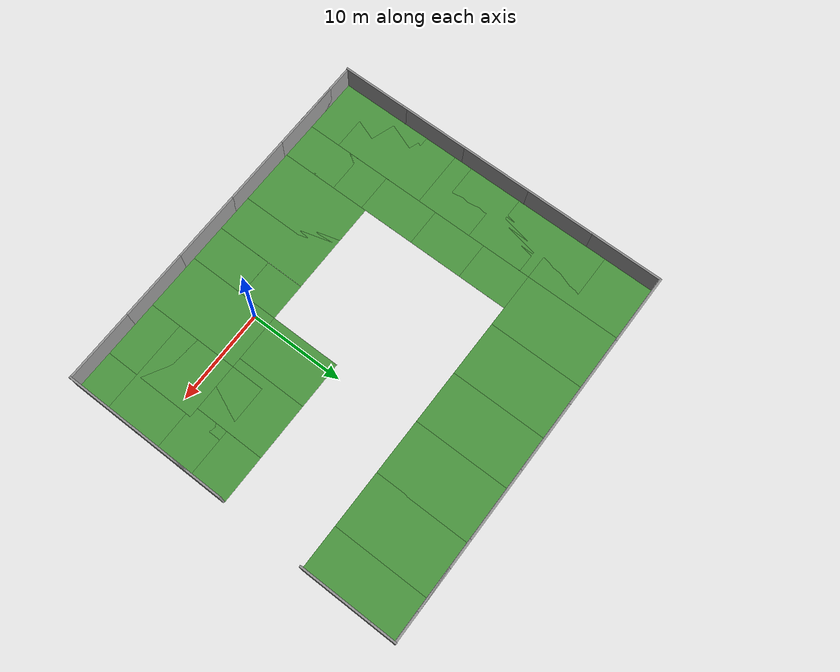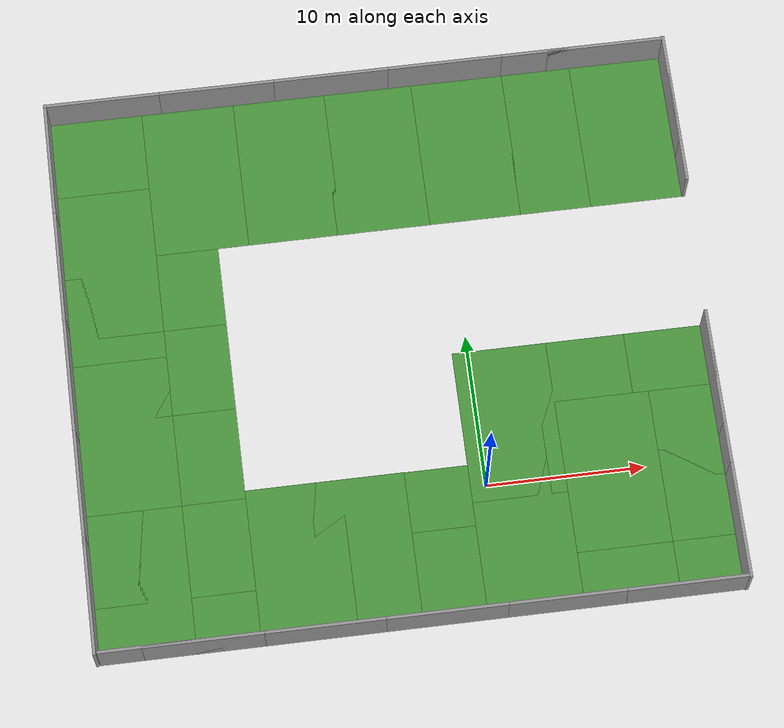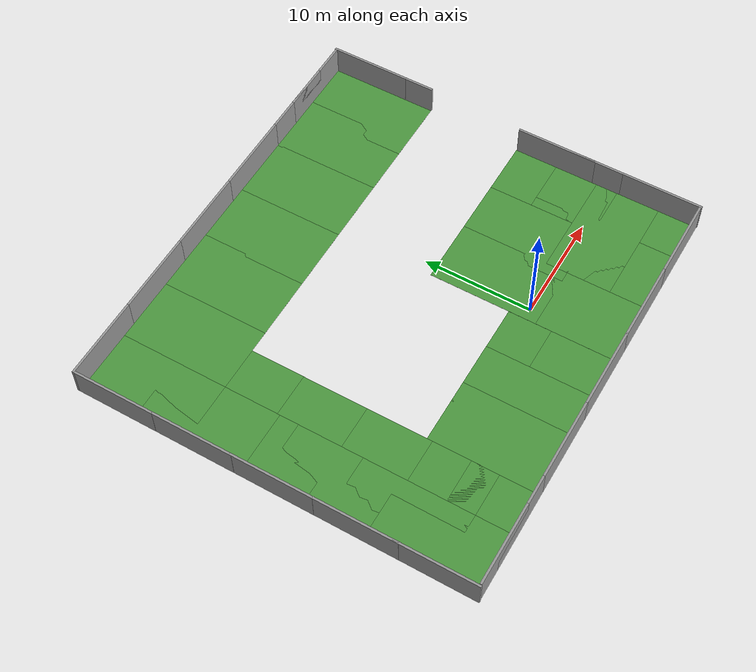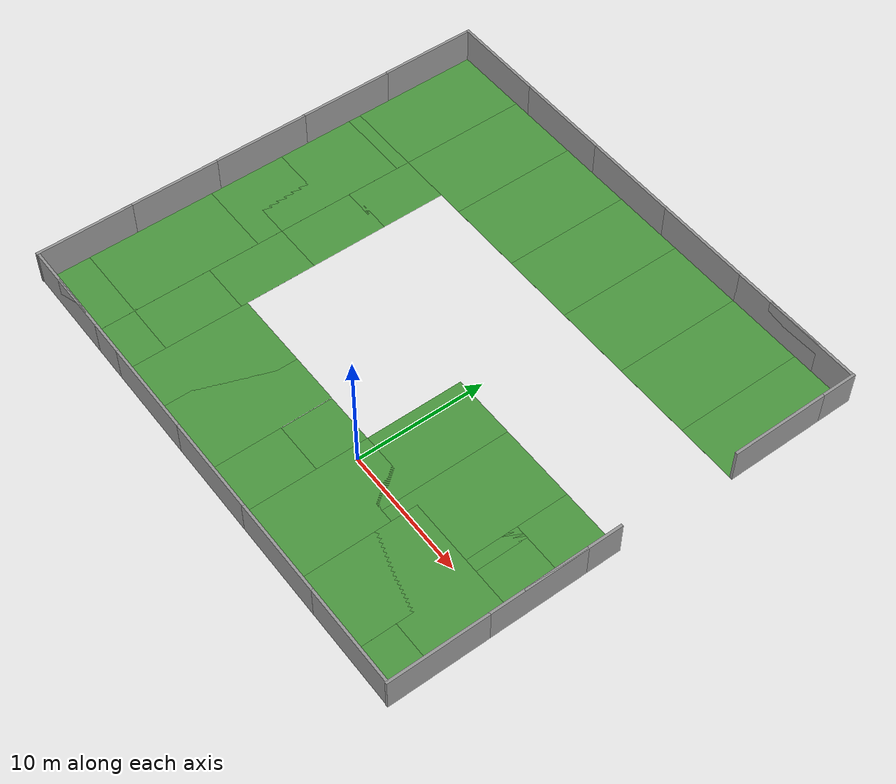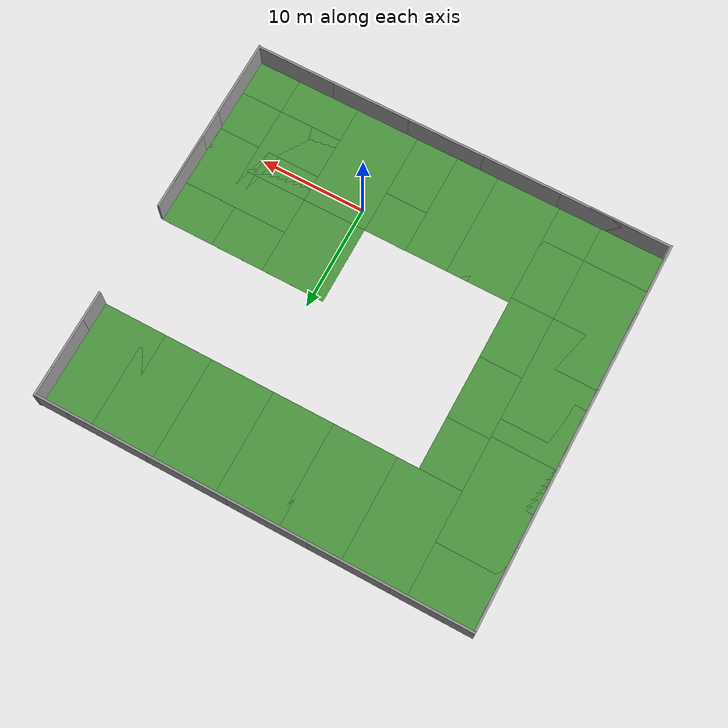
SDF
<sdf version="1.7">
 <world name="default">
  <physics name="ode_70iters" type="ode">
   <max_step_size>0.001</max_step_size>
   <real_time_update_rate>1000</real_time_update_rate>
   <ode>
    <solver>
     <type>quick</type>
     <iters>70</iters>
     <sor>1.3</sor>
     <use_dynamic_moi_rescaling>0</use_dynamic_moi_rescaling>
    </solver>
    <constraints>
     <cfm>0</cfm>
     <erp>0.2</erp>
     <contact_max_correcting_vel>100</contact_max_correcting_vel>
     <contact_surface_layer>0.001</contact_surface_layer>
    </constraints>
   </ode>
   <real_time_factor>1</real_time_factor>
  </physics>
  <model name="garden_0">
   <static>1</static>
   <link name="link">
    <collision name="collision">
     <geometry><plane><normal>0 0 1</normal><size>100 100</size></plane></geometry>
     <surface><friction><ode><mu>100</mu><mu2>50</mu2></ode></friction></surface>
    </collision>
    <visual name="visual_0">
     <pose>-2 0 0 0 -0 0</pose>
     <cast_shadows>0</cast_shadows>
     <geometry><plane><normal>0 0 1</normal><size>6 10</size></plane></geometry>
     <material>
      <script>
       <uri>model://garden/materials/scripts</uri>
       <uri>model://garden/materials/textures</uri>
       <name>vrc/grass</name>
      </script>
     </material>
    </visual>
    <visual name="visual_1">
     <pose>3 -2 0 0 -0 0</pose>
     <cast_shadows>0</cast_shadows>
     <geometry><plane><normal>0 0 1</normal><size>4 6</size></plane></geometry>
     <material>
      <script>
       <uri>model://garden/materials/scripts</uri>
       <uri>model://garden/materials/textures</uri>
       <name>vrc/grass</name>
      </script>
     </material>
    </visual>
   </link>
   <pose>0 0.5 0 0 -0 1.5708</pose>
  </model>
  <model name="garden_1">
   <static>1</static>
   <link name="link">
    <collision name="collision">
     <geometry><plane><normal>0 0 1</normal><size>100 100</size></plane></geometry>
     <surface><friction><ode><mu>100</mu><mu2>50</mu2></ode></friction></surface>
    </collision>
    <visual name="visual_0">
     <pose>-2 0 0 0 -0 0</pose>
     <cast_shadows>0</cast_shadows>
     <geometry><plane><normal>0 0 1</normal><size>6 10</size></plane></geometry>
     <material>
      <script>
       <uri>model://garden/materials/scripts</uri>
       <uri>model://garden/materials/textures</uri>
       <name>vrc/grass</name>
      </script>
     </material>
    </visual>
    <visual name="visual_1">
     <pose>3 -2 0 0 -0 0</pose>
     <cast_shadows>0</cast_shadows>
     <geometry><plane><normal>0 0 1</normal><size>4 6</size></plane></geometry>
     <material>
      <script>
       <uri>model://garden/materials/scripts</uri>
       <uri>model://garden/materials/textures</uri>
       <name>vrc/grass</name>
      </script>
     </material>
    </visual>
   </link>
   <pose>10 0 0 0 -0 1.5708</pose>
  </model>
  <model name="garden_2">
   <static>1</static>
   <link name="link">
    <collision name="collision">
     <geometry><plane><normal>0 0 1</normal><size>100 100</size></plane></geometry>
     <surface><friction><ode><mu>100</mu><mu2>50</mu2></ode></friction></surface>
    </collision>
    <visual name="visual_0">
     <pose>-2 0 0 0 -0 0</pose>
     <cast_shadows>0</cast_shadows>
     <geometry><plane><normal>0 0 1</normal><size>6 10</size></plane></geometry>
     <material>
      <script>
       <uri>model://garden/materials/scripts</uri>
       <uri>model://garden/materials/textures</uri>
       <name>vrc/grass</name>
      </script>
     </material>
    </visual>
    <visual name="visual_1">
     <pose>3 -2 0 0 -0 0</pose>
     <cast_shadows>0</cast_shadows>
     <geometry><plane><normal>0 0 1</normal><size>4 6</size></plane></geometry>
     <material>
      <script>
       <uri>model://garden/materials/scripts</uri>
       <uri>model://garden/materials/textures</uri>
       <name>vrc/grass</name>
      </script>
     </material>
    </visual>
   </link>
   <pose>10 0 0 0 -0 0</pose>
  </model>
  <model name="garden_3">
   <static>1</static>
   <link name="link">
    <collision name="collision">
     <geometry><plane><normal>0 0 1</normal><size>100 100</size></plane></geometry>
     <surface><friction><ode><mu>100</mu><mu2>50</mu2></ode></friction></surface>
    </collision>
    <visual name="visual_0">
     <pose>-2 0 0 0 -0 0</pose>
     <cast_shadows>0</cast_shadows>
     <geometry><plane><normal>0 0 1</normal><size>6 10</size></plane></geometry>
     <material>
      <script>
       <uri>model://garden/materials/scripts</uri>
       <uri>model://garden/materials/textures</uri>
       <name>vrc/grass</name>
      </script>
     </material>
    </visual>
    <visual name="visual_1">
     <pose>3 -2 0 0 -0 0</pose>
     <cast_shadows>0</cast_shadows>
     <geometry><plane><normal>0 0 1</normal><size>4 6</size></plane></geometry>
     <material>
      <script>
       <uri>model://garden/materials/scripts</uri>
       <uri>model://garden/materials/textures</uri>
       <name>vrc/grass</name>
      </script>
     </material>
    </visual>
   </link>
   <pose>4 4 0 0 -0 0</pose>
  </model>
  <model name="garden_4">
   <static>1</static>
   <link name="link">
    <collision name="collision">
     <geometry><plane><normal>0 0 1</normal><size>100 100</size></plane></geometry>
     <surface><friction><ode><mu>100</mu><mu2>50</mu2></ode></friction></surface>
    </collision>
    <visual name="visual_0">
     <pose>-2 0 0 0 -0 0</pose>
     <cast_shadows>0</cast_shadows>
     <geometry><plane><normal>0 0 1</normal><size>6 10</size></plane></geometry>
     <material>
      <script>
       <uri>model://garden/materials/scripts</uri>
       <uri>model://garden/materials/textures</uri>
       <name>vrc/grass</name>
      </script>
     </material>
    </visual>
    <visual name="visual_1">
     <pose>3 -2 0 0 -0 0</pose>
     <cast_shadows>0</cast_shadows>
     <geometry><plane><normal>0 0 1</normal><size>4 6</size></plane></geometry>
     <material>
      <script>
       <uri>model://garden/materials/scripts</uri>
       <uri>model://garden/materials/textures</uri>
       <name>vrc/grass</name>
      </script>
     </material>
    </visual>
   </link>
   <pose>9 4 0 0 -0 0</pose>
  </model>
  <model name="garden_5">
   <static>1</static>
   <link name="link">
    <collision name="collision">
     <geometry><plane><normal>0 0 1</normal><size>100 100</size></plane></geometry>
     <surface><friction><ode><mu>100</mu><mu2>50</mu2></ode></friction></surface>
    </collision>
    <visual name="visual_0">
     <pose>-2 0 0 0 -0 0</pose>
     <cast_shadows>0</cast_shadows>
     <geometry><plane><normal>0 0 1</normal><size>6 10</size></plane></geometry>
     <material>
      <script>
       <uri>model://garden/materials/scripts</uri>
       <uri>model://garden/materials/textures</uri>
       <name>vrc/grass</name>
      </script>
     </material>
    </visual>
    <visual name="visual_1">
     <pose>3 -2 0 0 -0 0</pose>
     <cast_shadows>0</cast_shadows>
     <geometry><plane><normal>0 0 1</normal><size>4 6</size></plane></geometry>
     <material>
      <script>
       <uri>model://garden/materials/scripts</uri>
       <uri>model://garden/materials/textures</uri>
       <name>vrc/grass</name>
      </script>
     </material>
    </visual>
   </link>
   <pose>10 4 0 0 -0 1.5708</pose>
  </model>
  <model name="garden_6">
   <static>1</static>
   <link name="link">
    <collision name="collision">
     <geometry><plane><normal>0 0 1</normal><size>100 100</size></plane></geometry>
     <surface><friction><ode><mu>100</mu><mu2>50</mu2></ode></friction></surface>
    </collision>
    <visual name="visual_0">
     <pose>-2 0 0 0 -0 0</pose>
     <cast_shadows>0</cast_shadows>
     <geometry><plane><normal>0 0 1</normal><size>6 10</size></plane></geometry>
     <material>
      <script>
       <uri>model://garden/materials/scripts</uri>
       <uri>model://garden/materials/textures</uri>
       <name>vrc/grass</name>
      </script>
     </material>
    </visual>
    <visual name="visual_1">
     <pose>3 -2 0 0 -0 0</pose>
     <cast_shadows>0</cast_shadows>
     <geometry><plane><normal>0 0 1</normal><size>4 6</size></plane></geometry>
     <material>
      <script>
       <uri>model://garden/materials/scripts</uri>
       <uri>model://garden/materials/textures</uri>
       <name>vrc/grass</name>
      </script>
     </material>
    </visual>
   </link>
   <pose>3.75 23 0 0 -0 0</pose>
  </model>
  <model name="garden_7">
   <static>1</static>
   <link name="link">
    <collision name="collision">
     <geometry><plane><normal>0 0 1</normal><size>100 100</size></plane></geometry>
     <surface><friction><ode><mu>100</mu><mu2>50</mu2></ode></friction></surface>
    </collision>
    <visual name="visual_0">
     <pose>-2 0 0 0 -0 0</pose>
     <cast_shadows>0</cast_shadows>
     <geometry><plane><normal>0 0 1</normal><size>6 10</size></plane></geometry>
     <material>
      <script>
       <uri>model://garden/materials/scripts</uri>
       <uri>model://garden/materials/textures</uri>
       <name>vrc/grass</name>
      </script>
     </material>
    </visual>
    <visual name="visual_1">
     <pose>3 -2 0 0 -0 0</pose>
     <cast_shadows>0</cast_shadows>
     <geometry><plane><normal>0 0 1</normal><size>4 6</size></plane></geometry>
     <material>
      <script>
       <uri>model://garden/materials/scripts</uri>
       <uri>model://garden/materials/textures</uri>
       <name>vrc/grass</name>
      </script>
     </material>
    </visual>
   </link>
   <pose>-10 -3.5 0 0 -0 0</pose>
  </model>
  <model name="garden_8">
   <static>1</static>
   <link name="link">
    <collision name="collision">
     <geometry><plane><normal>0 0 1</normal><size>100 100</size></plane></geometry>
     <surface><friction><ode><mu>100</mu><mu2>50</mu2></ode></friction></surface>
    </collision>
    <visual name="visual_0">
     <pose>-2 0 0 0 -0 0</pose>
     <cast_shadows>0</cast_shadows>
     <geometry><plane><normal>0 0 1</normal><size>6 10</size></plane></geometry>
     <material>
      <script>
       <uri>model://garden/materials/scripts</uri>
       <uri>model://garden/materials/textures</uri>
       <name>vrc/grass</name>
      </script>
     </material>
    </visual>
    <visual name="visual_1">
     <pose>3 -2 0 0 -0 0</pose>
     <cast_shadows>0</cast_shadows>
     <geometry><plane><normal>0 0 1</normal><size>4 6</size></plane></geometry>
     <material>
      <script>
       <uri>model://garden/materials/scripts</uri>
       <uri>model://garden/materials/textures</uri>
       <name>vrc/grass</name>
      </script>
     </material>
    </visual>
   </link>
   <pose>-6 -3.5 0 0 -0 0</pose>
  </model>
  <model name="garden_9">
   <static>1</static>
   <link name="link">
    <collision name="collision">
     <geometry><plane><normal>0 0 1</normal><size>100 100</size></plane></geometry>
     <surface><friction><ode><mu>100</mu><mu2>50</mu2></ode></friction></surface>
    </collision>
    <visual name="visual_0">
     <pose>-2 0 0 0 -0 0</pose>
     <cast_shadows>0</cast_shadows>
     <geometry><plane><normal>0 0 1</normal><size>6 10</size></plane></geometry>
     <material>
      <script>
       <uri>model://garden/materials/scripts</uri>
       <uri>model://garden/materials/textures</uri>
       <name>vrc/grass</name>
      </script>
     </material>
    </visual>
    <visual name="visual_1">
     <pose>3 -2 0 0 -0 0</pose>
     <cast_shadows>0</cast_shadows>
     <geometry><plane><normal>0 0 1</normal><size>4 6</size></plane></geometry>
     <material>
      <script>
       <uri>model://garden/materials/scripts</uri>
       <uri>model://garden/materials/textures</uri>
       <name>vrc/grass</name>
      </script>
     </material>
    </visual>
   </link>
   <pose>-20 0 0 0 -0 0</pose>
  </model>
  <model name="garden_10">
   <static>1</static>
   <link name="link">
    <collision name="collision">
     <geometry><plane><normal>0 0 1</normal><size>100 100</size></plane></geometry>
     <surface><friction><ode><mu>100</mu><mu2>50</mu2></ode></friction></surface>
    </collision>
    <visual name="visual_0">
     <pose>-2 0 0 0 -0 0</pose>
     <cast_shadows>0</cast_shadows>
     <geometry><plane><normal>0 0 1</normal><size>6 10</size></plane></geometry>
     <material>
      <script>
       <uri>model://garden/materials/scripts</uri>
       <uri>model://garden/materials/textures</uri>
       <name>vrc/grass</name>
      </script>
     </material>
    </visual>
    <visual name="visual_1">
     <pose>3 -2 0 0 -0 0</pose>
     <cast_shadows>0</cast_shadows>
     <geometry><plane><normal>0 0 1</normal><size>4 6</size></plane></geometry>
     <material>
      <script>
       <uri>model://garden/materials/scripts</uri>
       <uri>model://garden/materials/textures</uri>
       <name>vrc/grass</name>
      </script>
     </material>
    </visual>
   </link>
   <pose>-20 6 0 0 -0 0</pose>
  </model>
  <model name="garden_11">
   <static>1</static>
   <link name="link">
    <collision name="collision">
     <geometry><plane><normal>0 0 1</normal><size>100 100</size></plane></geometry>
     <surface><friction><ode><mu>100</mu><mu2>50</mu2></ode></friction></surface>
    </collision>
    <visual name="visual_0">
     <pose>-2 0 0 0 -0 0</pose>
     <cast_shadows>0</cast_shadows>
     <geometry><plane><normal>0 0 1</normal><size>6 10</size></plane></geometry>
     <material>
      <script>
       <uri>model://garden/materials/scripts</uri>
       <uri>model://garden/materials/textures</uri>
       <name>vrc/grass</name>
      </script>
     </material>
    </visual>
    <visual name="visual_1">
     <pose>3 -2 0 0 -0 0</pose>
     <cast_shadows>0</cast_shadows>
     <geometry><plane><normal>0 0 1</normal><size>4 6</size></plane></geometry>
     <material>
      <script>
       <uri>model://garden/materials/scripts</uri>
       <uri>model://garden/materials/textures</uri>
       <name>vrc/grass</name>
      </script>
     </material>
    </visual>
   </link>
   <pose>-20 12 0 0 -0 0</pose>
  </model>
  <model name="garden_12">
   <static>1</static>
   <link name="link">
    <collision name="collision">
     <geometry><plane><normal>0 0 1</normal><size>100 100</size></plane></geometry>
     <surface><friction><ode><mu>100</mu><mu2>50</mu2></ode></friction></surface>
    </collision>
    <visual name="visual_0">
     <pose>-2 0 0 0 -0 0</pose>
     <cast_shadows>0</cast_shadows>
     <geometry><plane><normal>0 0 1</normal><size>6 10</size></plane></geometry>
     <material>
      <script>
       <uri>model://garden/materials/scripts</uri>
       <uri>model://garden/materials/textures</uri>
       <name>vrc/grass</name>
      </script>
     </material>
    </visual>
    <visual name="visual_1">
     <pose>3 -2 0 0 -0 0</pose>
     <cast_shadows>0</cast_shadows>
     <geometry><plane><normal>0 0 1</normal><size>4 6</size></plane></geometry>
     <material>
      <script>
       <uri>model://garden/materials/scripts</uri>
       <uri>model://garden/materials/textures</uri>
       <name>vrc/grass</name>
      </script>
     </material>
    </visual>
   </link>
   <pose>-20 17.75 0 0 -0 0</pose>
  </model>
  <model name="garden_13">
   <static>1</static>
   <link name="link">
    <collision name="collision">
     <geometry><plane><normal>0 0 1</normal><size>100 100</size></plane></geometry>
     <surface><friction><ode><mu>100</mu><mu2>50</mu2></ode></friction></surface>
    </collision>
    <visual name="visual_0">
     <pose>-2 0 0 0 -0 0</pose>
     <cast_shadows>0</cast_shadows>
     <geometry><plane><normal>0 0 1</normal><size>6 10</size></plane></geometry>
     <material>
      <script>
       <uri>model://garden/materials/scripts</uri>
       <uri>model://garden/materials/textures</uri>
       <name>vrc/grass</name>
      </script>
     </material>
    </visual>
    <visual name="visual_1">
     <pose>3 -2 0 0 -0 0</pose>
     <cast_shadows>0</cast_shadows>
     <geometry><plane><normal>0 0 1</normal><size>4 6</size></plane></geometry>
     <material>
      <script>
       <uri>model://garden/materials/scripts</uri>
       <uri>model://garden/materials/textures</uri>
       <name>vrc/grass</name>
      </script>
     </material>
    </visual>
   </link>
   <pose>-20 23 0 0 -0 0</pose>
  </model>
  <model name="garden_14">
   <static>1</static>
   <link name="link">
    <collision name="collision">
     <geometry><plane><normal>0 0 1</normal><size>100 100</size></plane></geometry>
     <surface><friction><ode><mu>100</mu><mu2>50</mu2></ode></friction></surface>
    </collision>
    <visual name="visual_0">
     <pose>-2 0 0 0 -0 0</pose>
     <cast_shadows>0</cast_shadows>
     <geometry><plane><normal>0 0 1</normal><size>6 10</size></plane></geometry>
     <material>
      <script>
       <uri>model://garden/materials/scripts</uri>
       <uri>model://garden/materials/textures</uri>
       <name>vrc/grass</name>
      </script>
     </material>
    </visual>
    <visual name="visual_1">
     <pose>3 -2 0 0 -0 0</pose>
     <cast_shadows>0</cast_shadows>
     <geometry><plane><normal>0 0 1</normal><size>4 6</size></plane></geometry>
     <material>
      <script>
       <uri>model://garden/materials/scripts</uri>
       <uri>model://garden/materials/textures</uri>
       <name>vrc/grass</name>
      </script>
     </material>
    </visual>
   </link>
   <pose>-14 23 0 0 -0 0</pose>
  </model>
  <model name="garden_15">
   <static>1</static>
   <link name="link">
    <collision name="collision">
     <geometry><plane><normal>0 0 1</normal><size>100 100</size></plane></geometry>
     <surface><friction><ode><mu>100</mu><mu2>50</mu2></ode></friction></surface>
    </collision>
    <visual name="visual_0">
     <pose>-2 0 0 0 -0 0</pose>
     <cast_shadows>0</cast_shadows>
     <geometry><plane><normal>0 0 1</normal><size>6 10</size></plane></geometry>
     <material>
      <script>
       <uri>model://garden/materials/scripts</uri>
       <uri>model://garden/materials/textures</uri>
       <name>vrc/grass</name>
      </script>
     </material>
    </visual>
    <visual name="visual_1">
     <pose>3 -2 0 0 -0 0</pose>
     <cast_shadows>0</cast_shadows>
     <geometry><plane><normal>0 0 1</normal><size>4 6</size></plane></geometry>
     <material>
      <script>
       <uri>model://garden/materials/scripts</uri>
       <uri>model://garden/materials/textures</uri>
       <name>vrc/grass</name>
      </script>
     </material>
    </visual>
   </link>
   <pose>-8 23 0 0 -0 0</pose>
  </model>
  <model name="garden_16">
   <static>1</static>
   <link name="link">
    <collision name="collision">
     <geometry><plane><normal>0 0 1</normal><size>100 100</size></plane></geometry>
     <surface><friction><ode><mu>100</mu><mu2>50</mu2></ode></friction></surface>
    </collision>
    <visual name="visual_0">
     <pose>-2 0 0 0 -0 0</pose>
     <cast_shadows>0</cast_shadows>
     <geometry><plane><normal>0 0 1</normal><size>6 10</size></plane></geometry>
     <material>
      <script>
       <uri>model://garden/materials/scripts</uri>
       <uri>model://garden/materials/textures</uri>
       <name>vrc/grass</name>
      </script>
     </material>
    </visual>
    <visual name="visual_1">
     <pose>3 -2 0 0 -0 0</pose>
     <cast_shadows>0</cast_shadows>
     <geometry><plane><normal>0 0 1</normal><size>4 6</size></plane></geometry>
     <material>
      <script>
       <uri>model://garden/materials/scripts</uri>
       <uri>model://garden/materials/textures</uri>
       <name>vrc/grass</name>
      </script>
     </material>
    </visual>
   </link>
   <pose>-2.25 23 0 0 -0 0</pose>
  </model>
  <model name="garden_17">
   <static>1</static>
   <link name="link">
    <collision name="collision">
     <geometry><plane><normal>0 0 1</normal><size>100 100</size></plane></geometry>
     <surface><friction><ode><mu>100</mu><mu2>50</mu2></ode></friction></surface>
    </collision>
    <visual name="visual_0">
     <pose>-2 0 0 0 -0 0</pose>
     <cast_shadows>0</cast_shadows>
     <geometry><plane><normal>0 0 1</normal><size>6 10</size></plane></geometry>
     <material>
      <script>
       <uri>model://garden/materials/scripts</uri>
       <uri>model://garden/materials/textures</uri>
       <name>vrc/grass</name>
      </script>
     </material>
    </visual>
    <visual name="visual_1">
     <pose>3 -2 0 0 -0 0</pose>
     <cast_shadows>0</cast_shadows>
     <geometry><plane><normal>0 0 1</normal><size>4 6</size></plane></geometry>
     <material>
      <script>
       <uri>model://garden/materials/scripts</uri>
       <uri>model://garden/materials/textures</uri>
       <name>vrc/grass</name>
      </script>
     </material>
    </visual>
   </link>
   <pose>-20 -3.5 0 0 -0 0</pose>
  </model>
  <model name="garden_18">
   <static>1</static>
   <link name="link">
    <collision name="collision">
     <geometry><plane><normal>0 0 1</normal><size>100 100</size></plane></geometry>
     <surface><friction><ode><mu>100</mu><mu2>50</mu2></ode></friction></surface>
    </collision>
    <visual name="visual_0">
     <pose>-2 0 0 0 -0 0</pose>
     <cast_shadows>0</cast_shadows>
     <geometry><plane><normal>0 0 1</normal><size>6 10</size></plane></geometry>
     <material>
      <script>
       <uri>model://garden/materials/scripts</uri>
       <uri>model://garden/materials/textures</uri>
       <name>vrc/grass</name>
      </script>
     </material>
    </visual>
    <visual name="visual_1">
     <pose>3 -2 0 0 -0 0</pose>
     <cast_shadows>0</cast_shadows>
     <geometry><plane><normal>0 0 1</normal><size>4 6</size></plane></geometry>
     <material>
      <script>
       <uri>model://garden/materials/scripts</uri>
       <uri>model://garden/materials/textures</uri>
       <name>vrc/grass</name>
      </script>
     </material>
    </visual>
   </link>
   <pose>4 -3.5 0 0 -0 0</pose>
  </model>
  <model name="garden_19">
   <static>1</static>
   <link name="link">
    <collision name="collision">
     <geometry><plane><normal>0 0 1</normal><size>100 100</size></plane></geometry>
     <surface><friction><ode><mu>100</mu><mu2>50</mu2></ode></friction></surface>
    </collision>
    <visual name="visual_0">
     <pose>-2 0 0 0 -0 0</pose>
     <cast_shadows>0</cast_shadows>
     <geometry><plane><normal>0 0 1</normal><size>6 10</size></plane></geometry>
     <material>
      <script>
       <uri>model://garden/materials/scripts</uri>
       <uri>model://garden/materials/textures</uri>
       <name>vrc/grass</name>
      </script>
     </material>
    </visual>
    <visual name="visual_1">
     <pose>3 -2 0 0 -0 0</pose>
     <cast_shadows>0</cast_shadows>
     <geometry><plane><normal>0 0 1</normal><size>4 6</size></plane></geometry>
     <material>
      <script>
       <uri>model://garden/materials/scripts</uri>
       <uri>model://garden/materials/textures</uri>
       <name>vrc/grass</name>
      </script>
     </material>
    </visual>
   </link>
   <pose>10 -3.5 0 0 -0 0</pose>
  </model>
  <model name="garden_20">
   <static>1</static>
   <link name="link">
    <collision name="collision">
     <geometry><plane><normal>0 0 1</normal><size>100 100</size></plane></geometry>
     <surface><friction><ode><mu>100</mu><mu2>50</mu2></ode></friction></surface>
    </collision>
    <visual name="visual_0">
     <pose>-2 0 0 0 -0 0</pose>
     <cast_shadows>0</cast_shadows>
     <geometry><plane><normal>0 0 1</normal><size>6 10</size></plane></geometry>
     <material>
      <script>
       <uri>model://garden/materials/scripts</uri>
       <uri>model://garden/materials/textures</uri>
       <name>vrc/grass</name>
      </script>
     </material>
    </visual>
    <visual name="visual_1">
     <pose>3 -2 0 0 -0 0</pose>
     <cast_shadows>0</cast_shadows>
     <geometry><plane><normal>0 0 1</normal><size>4 6</size></plane></geometry>
     <material>
      <script>
       <uri>model://garden/materials/scripts</uri>
       <uri>model://garden/materials/textures</uri>
       <name>vrc/grass</name>
      </script>
     </material>
    </visual>
   </link>
   <pose>9.66 23 0 0 -0 0</pose>
  </model>
  <model name="garden_21">
   <static>1</static>
   <link name="link">
    <collision name="collision">
     <geometry><plane><normal>0 0 1</normal><size>100 100</size></plane></geometry>
     <surface><friction><ode><mu>100</mu><mu2>50</mu2></ode></friction></surface>
    </collision>
    <visual name="visual_0">
     <pose>-2 0 0 0 -0 0</pose>
     <cast_shadows>0</cast_shadows>
     <geometry><plane><normal>0 0 1</normal><size>6 10</size></plane></geometry>
     <material>
      <script>
       <uri>model://garden/materials/scripts</uri>
       <uri>model://garden/materials/textures</uri>
       <name>vrc/grass</name>
      </script>
     </material>
    </visual>
    <visual name="visual_1">
     <pose>3 -2 0 0 -0 0</pose>
     <cast_shadows>0</cast_shadows>
     <geometry><plane><normal>0 0 1</normal><size>4 6</size></plane></geometry>
     <material>
      <script>
       <uri>model://garden/materials/scripts</uri>
       <uri>model://garden/materials/textures</uri>
       <name>vrc/grass</name>
      </script>
     </material>
    </visual>
   </link>
   <pose>10.25 23 0 0 -0 3.14159</pose>
  </model>
  <model name="grey_wall_0">
   <static>1</static>
   <link name="link">
    <pose>0 0 1.4 0 -0 0</pose>
    <collision name="collision"><geometry><box><size>7.5 0.2 2.8</size></box></geometry></collision>
    <visual name="visual">
     <cast_shadows>0</cast_shadows>
     <geometry><box><size>7.5 0.2 2.8</size></box></geometry>
     <material>
      <script>
       <uri>model://grey_wall/materials/scripts</uri>
       <uri>model://grey_wall/materials/textures</uri>
       <name>vrc/grey_wall</name>
      </script>
     </material>
    </visual>
   </link>
   <pose>15.0243 5.21157 0 0 -0 1.57</pose>
  </model>
  <model name="grey_wall_1">
   <static>1</static>
   <link name="link">
    <pose>0 0 1.4 0 -0 0</pose>
    <collision name="collision"><geometry><box><size>7.5 0.2 2.8</size></box></geometry></collision>
    <visual name="visual">
     <cast_shadows>0</cast_shadows>
     <geometry><box><size>7.5 0.2 2.8</size></box></geometry>
     <material>
      <script>
       <uri>model://grey_wall/materials/scripts</uri>
       <uri>model://grey_wall/materials/textures</uri>
       <name>vrc/grey_wall</name>
      </script>
     </material>
    </visual>
   </link>
   <pose>15.0243 2.54421 0 0 -0 1.57</pose>
  </model>
  <model name="grey_wall_2">
   <static>1</static>
   <link name="link">
    <pose>0 0 1.4 0 -0 0</pose>
    <collision name="collision"><geometry><box><size>7.5 0.2 2.8</size></box></geometry></collision>
    <visual name="visual">
     <cast_shadows>0</cast_shadows>
     <geometry><box><size>7.5 0.2 2.8</size></box></geometry>
     <material>
      <script>
       <uri>model://grey_wall/materials/scripts</uri>
       <uri>model://grey_wall/materials/textures</uri>
       <name>vrc/grey_wall</name>
      </script>
     </material>
    </visual>
   </link>
   <pose>15.0243 -4.89 0 0 -0 1.57</pose>
  </model>
  <model name="grey_wall_3">
   <static>1</static>
   <link name="link">
    <pose>0 0 1.4 0 -0 0</pose>
    <collision name="collision"><geometry><box><size>7.5 0.2 2.8</size></box></geometry></collision>
    <visual name="visual">
     <cast_shadows>0</cast_shadows>
     <geometry><box><size>7.5 0.2 2.8</size></box></geometry>
     <material>
      <script>
       <uri>model://grey_wall/materials/scripts</uri>
       <uri>model://grey_wall/materials/textures</uri>
       <name>vrc/grey_wall</name>
      </script>
     </material>
    </visual>
   </link>
   <pose>11.2137 -8.5 0 0 -0 0</pose>
  </model>
  <model name="grey_wall_4">
   <static>1</static>
   <link name="link">
    <pose>0 0 1.4 0 -0 0</pose>
    <collision name="collision"><geometry><box><size>7.5 0.2 2.8</size></box></geometry></collision>
    <visual name="visual">
     <cast_shadows>0</cast_shadows>
     <geometry><box><size>7.5 0.2 2.8</size></box></geometry>
     <material>
      <script>
       <uri>model://grey_wall/materials/scripts</uri>
       <uri>model://grey_wall/materials/textures</uri>
       <name>vrc/grey_wall</name>
      </script>
     </material>
    </visual>
   </link>
   <pose>3.7659 -8.5 0 0 -0 0</pose>
  </model>
  <model name="grey_wall_5">
   <static>1</static>
   <link name="link">
    <pose>0 0 1.4 0 -0 0</pose>
    <collision name="collision"><geometry><box><size>7.5 0.2 2.8</size></box></geometry></collision>
    <visual name="visual">
     <cast_shadows>0</cast_shadows>
     <geometry><box><size>7.5 0.2 2.8</size></box></geometry>
     <material>
      <script>
       <uri>model://grey_wall/materials/scripts</uri>
       <uri>model://grey_wall/materials/textures</uri>
       <name>vrc/grey_wall</name>
      </script>
     </material>
    </visual>
   </link>
   <pose>-3.57393 -8.5 0 0 -0 0</pose>
  </model>
  <model name="grey_wall_6">
   <static>1</static>
   <link name="link">
    <pose>0 0 1.4 0 -0 0</pose>
    <collision name="collision"><geometry><box><size>7.5 0.2 2.8</size></box></geometry></collision>
    <visual name="visual">
     <cast_shadows>0</cast_shadows>
     <geometry><box><size>7.5 0.2 2.8</size></box></geometry>
     <material>
      <script>
       <uri>model://grey_wall/materials/scripts</uri>
       <uri>model://grey_wall/materials/textures</uri>
       <name>vrc/grey_wall</name>
      </script>
     </material>
    </visual>
   </link>
   <pose>-10.9924 -8.5 0 0 -0 0</pose>
  </model>
  <model name="grey_wall_7">
   <static>1</static>
   <link name="link">
    <pose>0 0 1.4 0 -0 0</pose>
    <collision name="collision"><geometry><box><size>7.5 0.2 2.8</size></box></geometry></collision>
    <visual name="visual">
     <cast_shadows>0</cast_shadows>
     <geometry><box><size>7.5 0.2 2.8</size></box></geometry>
     <material>
      <script>
       <uri>model://grey_wall/materials/scripts</uri>
       <uri>model://grey_wall/materials/textures</uri>
       <name>vrc/grey_wall</name>
      </script>
     </material>
    </visual>
   </link>
   <pose>-18.446 -8.5 0 0 -0 0</pose>
  </model>
  <model name="grey_wall_8">
   <static>1</static>
   <link name="link">
    <pose>0 0 1.4 0 -0 0</pose>
    <collision name="collision"><geometry><box><size>7.5 0.2 2.8</size></box></geometry></collision>
    <visual name="visual">
     <cast_shadows>0</cast_shadows>
     <geometry><box><size>7.5 0.2 2.8</size></box></geometry>
     <material>
      <script>
       <uri>model://grey_wall/materials/scripts</uri>
       <uri>model://grey_wall/materials/textures</uri>
       <name>vrc/grey_wall</name>
      </script>
     </material>
    </visual>
   </link>
   <pose>-21.172 -8.5 0 0 -0 0</pose>
  </model>
  <model name="grey_wall_9">
   <static>1</static>
   <link name="link">
    <pose>0 0 1.4 0 -0 0</pose>
    <collision name="collision"><geometry><box><size>7.5 0.2 2.8</size></box></geometry></collision>
    <visual name="visual">
     <cast_shadows>0</cast_shadows>
     <geometry><box><size>7.5 0.2 2.8</size></box></geometry>
     <material>
      <script>
       <uri>model://grey_wall/materials/scripts</uri>
       <uri>model://grey_wall/materials/textures</uri>
       <name>vrc/grey_wall</name>
      </script>
     </material>
    </visual>
   </link>
   <pose>-25.068 -4.89 0 0 -0 1.57</pose>
  </model>
  <model name="grey_wall_10">
   <static>1</static>
   <link name="link">
    <pose>0 0 1.4 0 -0 0</pose>
    <collision name="collision"><geometry><box><size>7.5 0.2 2.8</size></box></geometry></collision>
    <visual name="visual">
     <cast_shadows>0</cast_shadows>
     <geometry><box><size>7.5 0.2 2.8</size></box></geometry>
     <material>
      <script>
       <uri>model://grey_wall/materials/scripts</uri>
       <uri>model://grey_wall/materials/textures</uri>
       <name>vrc/grey_wall</name>
      </script>
     </material>
    </visual>
   </link>
   <pose>-25.068 2.0456 0 0 -0 1.57</pose>
  </model>
  <model name="grey_wall_11">
   <static>1</static>
   <link name="link">
    <pose>0 0 1.4 0 -0 0</pose>
    <collision name="collision"><geometry><box><size>7.5 0.2 2.8</size></box></geometry></collision>
    <visual name="visual">
     <cast_shadows>0</cast_shadows>
     <geometry><box><size>7.5 0.2 2.8</size></box></geometry>
     <material>
      <script>
       <uri>model://grey_wall/materials/scripts</uri>
       <uri>model://grey_wall/materials/textures</uri>
       <name>vrc/grey_wall</name>
      </script>
     </material>
    </visual>
   </link>
   <pose>-25.068 9.52776 0 0 -0 1.57</pose>
  </model>
  <model name="grey_wall_12">
   <static>1</static>
   <link name="link">
    <pose>0 0 1.4 0 -0 0</pose>
    <collision name="collision"><geometry><box><size>7.5 0.2 2.8</size></box></geometry></collision>
    <visual name="visual">
     <cast_shadows>0</cast_shadows>
     <geometry><box><size>7.5 0.2 2.8</size></box></geometry>
     <material>
      <script>
       <uri>model://grey_wall/materials/scripts</uri>
       <uri>model://grey_wall/materials/textures</uri>
       <name>vrc/grey_wall</name>
      </script>
     </material>
    </visual>
   </link>
   <pose>-25.068 16.831 0 0 -0 1.57</pose>
  </model>
  <model name="grey_wall_13">
   <static>1</static>
   <link name="link">
    <pose>0 0 1.4 0 -0 0</pose>
    <collision name="collision"><geometry><box><size>7.5 0.2 2.8</size></box></geometry></collision>
    <visual name="visual">
     <cast_shadows>0</cast_shadows>
     <geometry><box><size>7.5 0.2 2.8</size></box></geometry>
     <material>
      <script>
       <uri>model://grey_wall/materials/scripts</uri>
       <uri>model://grey_wall/materials/textures</uri>
       <name>vrc/grey_wall</name>
      </script>
     </material>
    </visual>
   </link>
   <pose>-25.068 24.2406 0 0 -0 1.57</pose>
  </model>
  <model name="grey_wall_14">
   <static>1</static>
   <link name="link">
    <pose>0 0 1.4 0 -0 0</pose>
    <collision name="collision"><geometry><box><size>7.5 0.2 2.8</size></box></geometry></collision>
    <visual name="visual">
     <cast_shadows>0</cast_shadows>
     <geometry><box><size>7.5 0.2 2.8</size></box></geometry>
     <material>
      <script>
       <uri>model://grey_wall/materials/scripts</uri>
       <uri>model://grey_wall/materials/textures</uri>
       <name>vrc/grey_wall</name>
      </script>
     </material>
    </visual>
   </link>
   <pose>-21.4073 28.1 0 0 -0 0</pose>
  </model>
  <model name="grey_wall_15">
   <static>1</static>
   <link name="link">
    <pose>0 0 1.4 0 -0 0</pose>
    <collision name="collision"><geometry><box><size>7.5 0.2 2.8</size></box></geometry></collision>
    <visual name="visual">
     <cast_shadows>0</cast_shadows>
     <geometry><box><size>7.5 0.2 2.8</size></box></geometry>
     <material>
      <script>
       <uri>model://grey_wall/materials/scripts</uri>
       <uri>model://grey_wall/materials/textures</uri>
       <name>vrc/grey_wall</name>
      </script>
     </material>
    </visual>
   </link>
   <pose>-13.9233 28.1 0 0 -0 0</pose>
  </model>
  <model name="grey_wall_16">
   <static>1</static>
   <link name="link">
    <pose>0 0 1.4 0 -0 0</pose>
    <collision name="collision"><geometry><box><size>7.5 0.2 2.8</size></box></geometry></collision>
    <visual name="visual">
     <cast_shadows>0</cast_shadows>
     <geometry><box><size>7.5 0.2 2.8</size></box></geometry>
     <material>
      <script>
       <uri>model://grey_wall/materials/scripts</uri>
       <uri>model://grey_wall/materials/textures</uri>
       <name>vrc/grey_wall</name>
      </script>
     </material>
    </visual>
   </link>
   <pose>-6.46638 28.1 0 0 -0 0</pose>
  </model>
  <model name="grey_wall_17">
   <static>1</static>
   <link name="link">
    <pose>0 0 1.4 0 -0 0</pose>
    <collision name="collision"><geometry><box><size>7.5 0.2 2.8</size></box></geometry></collision>
    <visual name="visual">
     <cast_shadows>0</cast_shadows>
     <geometry><box><size>7.5 0.2 2.8</size></box></geometry>
     <material>
      <script>
       <uri>model://grey_wall/materials/scripts</uri>
       <uri>model://grey_wall/materials/textures</uri>
       <name>vrc/grey_wall</name>
      </script>
     </material>
    </visual>
   </link>
   <pose>1 28.1 0 0 -0 0</pose>
  </model>
  <model name="grey_wall_18">
   <static>1</static>
   <link name="link">
    <pose>0 0 1.4 0 -0 0</pose>
    <collision name="collision"><geometry><box><size>7.5 0.2 2.8</size></box></geometry></collision>
    <visual name="visual">
     <cast_shadows>0</cast_shadows>
     <geometry><box><size>7.5 0.2 2.8</size></box></geometry>
     <material>
      <script>
       <uri>model://grey_wall/materials/scripts</uri>
       <uri>model://grey_wall/materials/textures</uri>
       <name>vrc/grey_wall</name>
      </script>
     </material>
    </visual>
   </link>
   <pose>8.43917 28.1 0 0 -0 0</pose>
  </model>
  <model name="grey_wall_19">
   <static>1</static>
   <link name="link">
    <pose>0 0 1.4 0 -0 0</pose>
    <collision name="collision"><geometry><box><size>7.5 0.2 2.8</size></box></geometry></collision>
    <visual name="visual">
     <cast_shadows>0</cast_shadows>
     <geometry><box><size>7.5 0.2 2.8</size></box></geometry>
     <material>
      <script>
       <uri>model://grey_wall/materials/scripts</uri>
       <uri>model://grey_wall/materials/textures</uri>
       <name>vrc/grey_wall</name>
      </script>
     </material>
    </visual>
   </link>
   <pose>11.4623 28.1 0 0 -0 0</pose>
  </model>
  <model name="grey_wall_20">
   <static>1</static>
   <link name="link">
    <pose>0 0 1.4 0 -0 0</pose>
    <collision name="collision"><geometry><box><size>7.5 0.2 2.8</size></box></geometry></collision>
    <visual name="visual">
     <cast_shadows>0</cast_shadows>
     <geometry><box><size>7.5 0.2 2.8</size></box></geometry>
     <material>
      <script>
       <uri>model://grey_wall/materials/scripts</uri>
       <uri>model://grey_wall/materials/textures</uri>
       <name>vrc/grey_wall</name>
      </script>
     </material>
    </visual>
   </link>
   <pose>15.3 24.5 0 0 -0 1.57</pose>
  </model>
  <model name="grey_wall_21">
   <static>1</static>
   <link name="link">
    <pose>0 0 1.4 0 -0 0</pose>
    <collision name="collision"><geometry><box><size>7.5 0.2 2.8</size></box></geometry></collision>
    <visual name="visual">
     <cast_shadows>0</cast_shadows>
     <geometry><box><size>7.5 0.2 2.8</size></box></geometry>
     <material>
      <script>
       <uri>model://grey_wall/materials/scripts</uri>
       <uri>model://grey_wall/materials/textures</uri>
       <name>vrc/grey_wall</name>
      </script>
     </material>
    </visual>
   </link>
   <pose>15.3 21.7285 0 0 -0 1.57</pose>
  </model>
  <light name="sun" type="directional">
   <pose>0 0 10 0 -0 0</pose>
   <diffuse>0.8 0.8 0.8 1</diffuse>
   <specular>0.2 0.2 0.2 1</specular>
   <attenuation>
    <range>1000</range>
    <constant>0.9</constant>
    <linear>0.01</linear>
    <quadratic>0.001</quadratic>
   </attenuation>
   <direction>-0.5 0.1 -0.9</direction>
   <spot><inner_angle>0</inner_angle><outer_angle>0</outer_angle><falloff>0</falloff></spot>
  </light>
  <gravity>0 0 -9.8</gravity>
  <magnetic_field>6e-06 2.3e-05 -4.2e-05</magnetic_field>
  <atmosphere type="adiabatic"/>
  <scene><ambient>0.4 0.4 0.4 1</ambient><background>0.7 0.7 0.7 1</background><shadows>1</shadows></scene>
  <spherical_coordinates>
   <surface_model>EARTH_WGS84</surface_model>
   <latitude_deg>33.83</latitude_deg>
   <longitude_deg>-84.42</longitude_deg>
   <elevation>254.99568</elevation>
   <heading_deg>180</heading_deg>
  </spherical_coordinates>
 </world>
</sdf>
